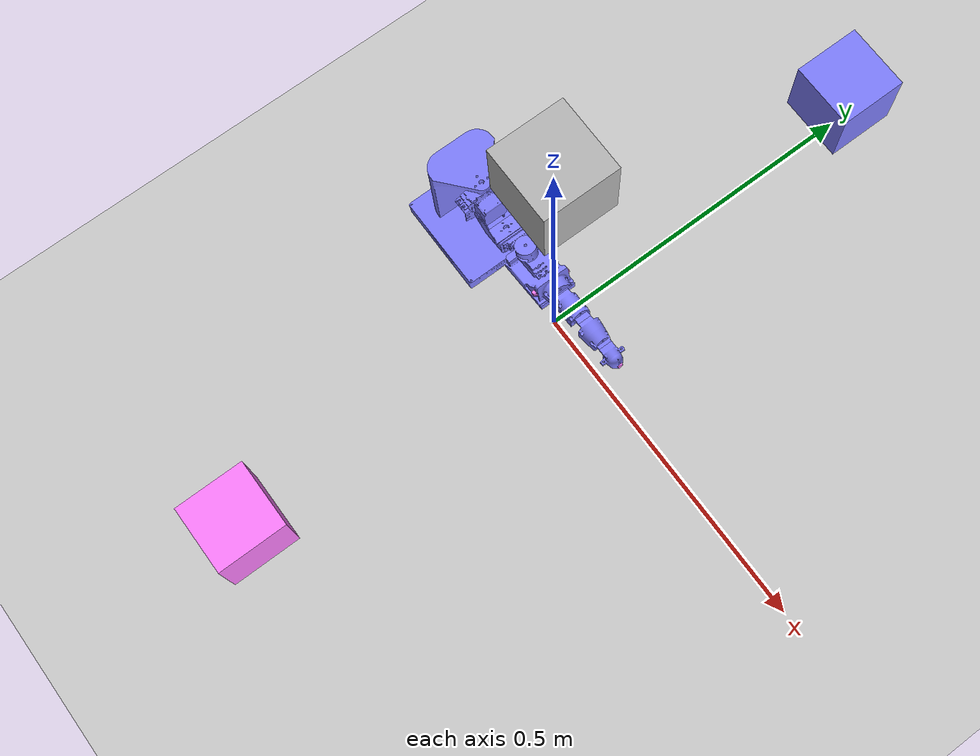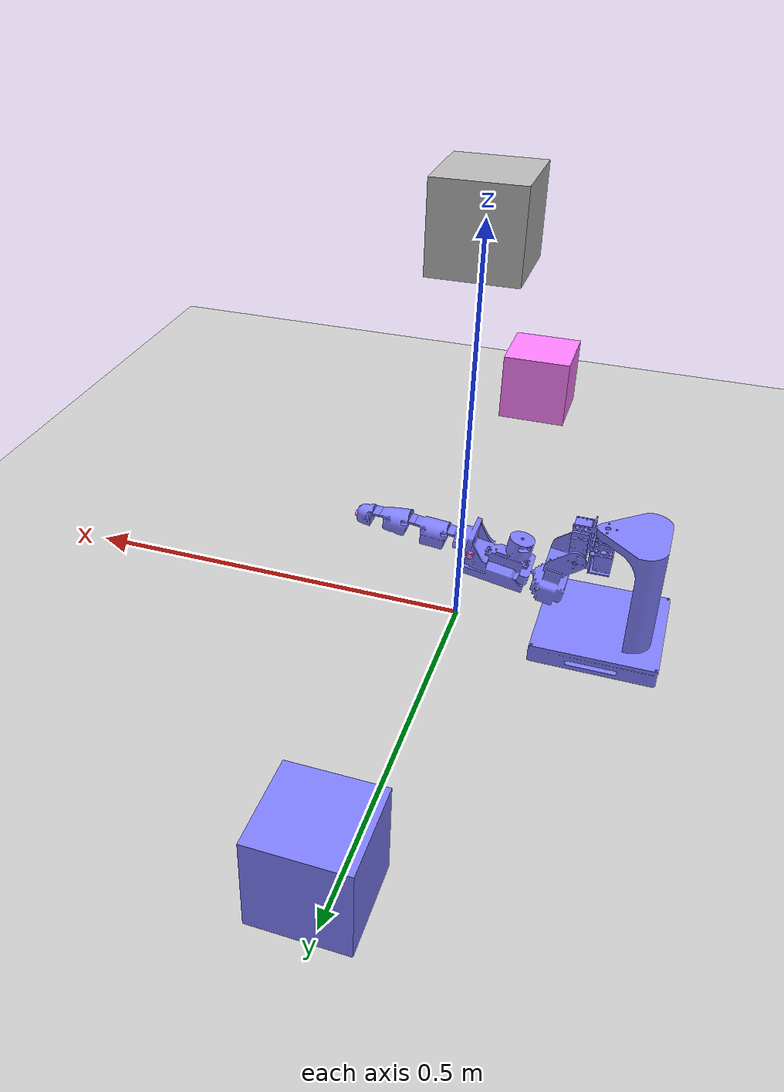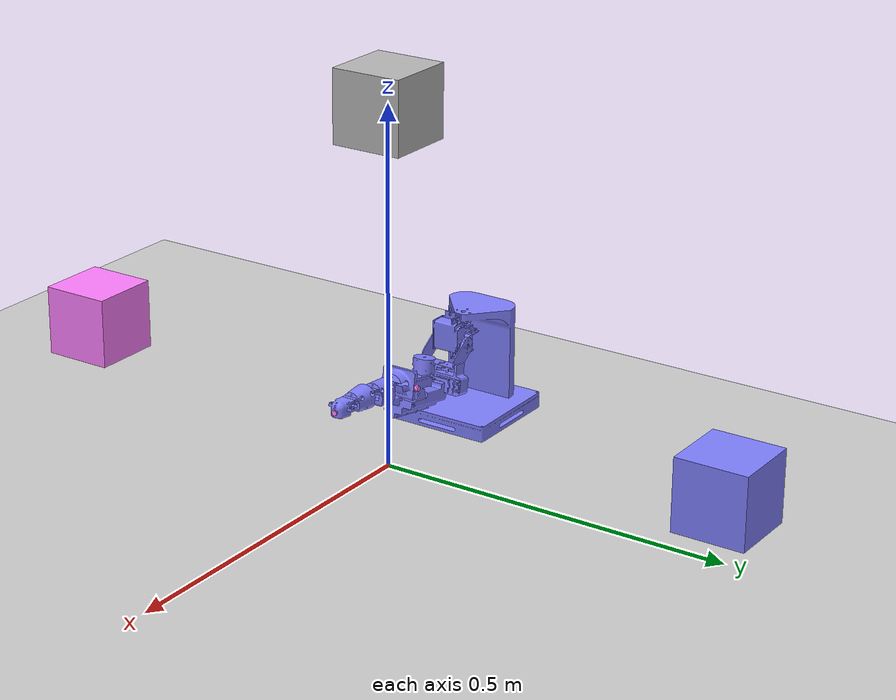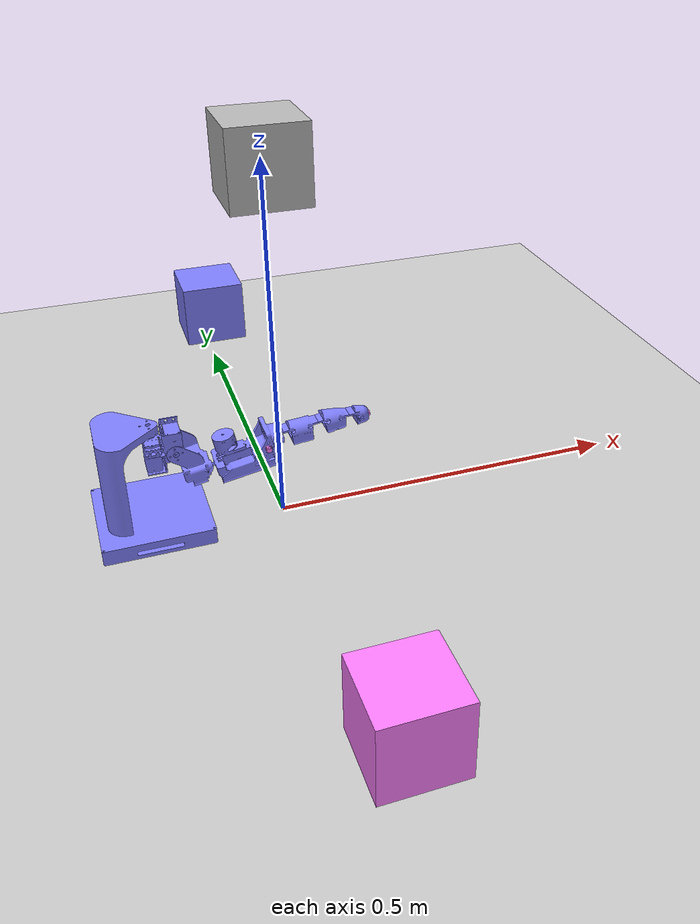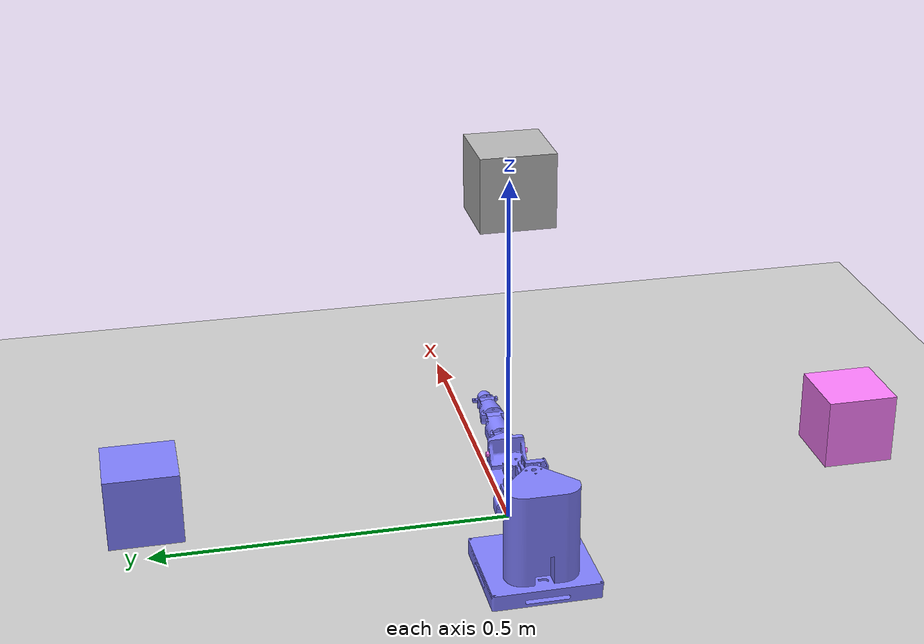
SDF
<?xml version="1.0"?>
<sdf version="1.8">
  <world name="arm_simulation">
    <physics name="1ms" type="ignored">
      <max_step_size>0.001</max_step_size>
      <real_time_factor>1.0</real_time_factor> <!-- Change this to run faster/slower than real time. Set higher to allow running faster (e.g. 2.0 means gazebo can run a max of twice as fast as realtime) -->
    </physics>
    <plugin
      filename="gz-sim-physics-system"
      name="gz::sim::systems::Physics">
    </plugin>
    <plugin
      filename="gz-sim-user-commands-system"
      name="gz::sim::systems::UserCommands">
    </plugin>
    <plugin
      filename="gz-sim-scene-broadcaster-system"
      name="gz::sim::systems::SceneBroadcaster">
    </plugin>
    <plugin
      filename="gz-sim-sensors-system"
      name="gz::sim::systems::Sensors">
      <render_engine>ogre2</render_engine>
    </plugin>
    <gui fullscreen="0">
      <!-- 3D scene -->
      <plugin filename="MinimalScene" name="3D View">
        <gz-gui>
          <title>3D View</title>
          <property type="bool" key="showTitleBar">false</property>
          <property type="string" key="state">docked</property>
        </gz-gui>

        <engine>ogre2</engine>
        <scene>scene</scene>
        <ambient_light>0.4 0.4 0.4</ambient_light>
        <background_color>0.8 0.8 0.8</background_color>
        <camera_pose>-6 0 6 0 0.5 0</camera_pose>
        <camera_clip>
          <near>0.25</near>
          <far>25000</far>
        </camera_clip>
      </plugin>
      <plugin filename="VisualizationCapabilities" name="Visualization Capabilities">
        <gz-gui>
          <property key="resizable" type="bool">false</property>
          <property key="width" type="double">5</property>
          <property key="height" type="double">5</property>
          <property key="state" type="string">floating</property>
          <property key="showTitleBar" type="bool">false</property>
        </gz-gui>
      </plugin>
      <plugin filename="GzSceneManager" name="Scene Manager">
        <gz-gui>
          <property key="resizable" type="bool">false</property>
          <property key="width" type="double">5</property>
          <property key="height" type="double">5</property>
          <property key="state" type="string">floating</property>
          <property key="showTitleBar" type="bool">false</property>
        </gz-gui>
      </plugin>
      <plugin filename="InteractiveViewControl" name="Interactive View Control">
        <gz-gui>
          <property key="resizable" type="bool">false</property>
        </gz-gui>
      </plugin>
      <plugin filename="ImageDisplay" name="Image Display">
        <gz-gui>
        </gz-gui>
      </plugin>
      <plugin filename="WorldControl" name="World control">
        <gz-gui>
          <title>World control</title>
          <property type="bool" key="showTitleBar">false</property>
          <property type="bool" key="resizable">false</property>
          <property type="double" key="height">72</property>
          <property type="double" key="width">121</property>
          <property type="double" key="z">1</property>

          <property type="string" key="state">floating</property>
          <anchors target="3D View">
            <line own="left" target="left"/>
            <line own="bottom" target="bottom"/>
          </anchors>
        </gz-gui>

        <play_pause>true</play_pause>
        <step>true</step>
        <start_paused>true</start_paused>
        <service>/world/world_demo/control</service>
        <stats_topic>/world/world_demo/stats</stats_topic>
      </plugin>
      <plugin filename="WorldStats" name="World stats">
        <gz-gui>
          <title>World stats</title>
          <property type="bool" key="showTitleBar">false</property>
          <property type="bool" key="resizable">false</property>
          <property type="double" key="height">110</property>
          <property type="double" key="width">290</property>
          <property type="double" key="z">1</property>

          <property type="string" key="state">floating</property>
          <anchors target="3D View">
            <line own="right" target="right"/>
            <line own="bottom" target="bottom"/>
          </anchors>
        </gz-gui>

        <sim_time>true</sim_time>
        <real_time>true</real_time>
        <real_time_factor>true</real_time_factor>
        <iterations>true</iterations>
        <topic>/world/world_demo/stats</topic>

      </plugin>
    </gui>

    <light type="directional" name="sun">
      <cast_shadows>true</cast_shadows>
      <pose>0 0 10 0 0 0</pose>
      <diffuse>0.8 0.8 0.8 1</diffuse>
      <specular>0.2 0.2 0.2 1</specular>
      <attenuation>
        <range>1000</range>
        <constant>0.9</constant>
        <linear>0.01</linear>
        <quadratic>0.001</quadratic>
      </attenuation>
      <direction>-0.5 0.1 -0.9</direction>
    </light>

    <model name="ground_plane">
      <static>true</static>
      <link name="link">
        <collision name="collision">
          <geometry>
            <plane>
              <normal>0 0 1</normal>
            </plane>
          </geometry>
        </collision>
        <visual name="visual">
        <geometry>
          <plane>
            <normal>0 0 1</normal>
            <size>100 100</size>
          </plane>
        </geometry>
        <material>
          <ambient>0.8 0.8 0.8 1</ambient>
          <diffuse>0.8 0.8 0.8 1</diffuse>
          <specular>0.8 0.8 0.8 1</specular>
        </material>
        </visual>
      </link>
    </model>

    <include>
      <uri>model://Arm</uri>
    </include>

    <include>
      <name>Box1</name>
      <uri>model://BoxBlack</uri>
    </include>
    <include>
      <name>Box2</name>
      <uri>model://BoxBlue</uri>
      <pose>0 0.5 0.1 0 0 0</pose>
    </include>
    <include>
      <name>Box3</name>
      <uri>model://BoxPink</uri>
      <pose>0 -0.5 0.1 0 0 0</pose>
    </include>
  </world>
</sdf>

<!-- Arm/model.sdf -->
<sdf version="1.6">
	<model name="Arm" canonical_link='tower'>
		<link name="tower">
			<self_collide>false</self_collide>
			<pose relative_to='__model__'>0.0 0.0 0.100 0.0 0.0 0.0</pose>
			<inertial>
				<pose>0.0 0.0 0.0 0 0 0</pose>
				<mass>0.7800822049961268</mass>
				<inertia>
					<ixx>0.0008189995972765369</ixx>
					<ixy>-0.0003321188952345544</ixy>
					<ixz>-5.532811351125456e-06</ixz>
					<iyy>0.0008182778100633983</iyy>
					<iyz>-5.094133998022077e-06</iyz>
					<izz>0.0011911804118455984</izz>
				</inertia>
			</inertial>
			<collision name="tower_collision">
				<geometry>
					<mesh>
						<uri>model://Arm/meshes/CAD/tower.stl</uri>
						<scale>0.001 0.001 0.001</scale>
					</mesh>
				</geometry>
			</collision>
			<visual name="tower_visual">
				<geometry>
					<mesh>
						<uri>model://Arm/meshes/CAD/tower.stl</uri>
						<scale>0.001 0.001 0.001</scale>
					</mesh>
				</geometry>
				<material>
					<ambient>0.5 0.5 1.0 1</ambient>
					<diffuse>0.5 0.5 1.0 1</diffuse>
					<specular>0.0 0.0 1.0 1</specular>
				</material>
			</visual>
		</link>
		<link name="wrist_up_down">
			<self_collide>false</self_collide>
			<pose relative_to='tower'>0.0 0.0 0.0 0.0 0.0 0.0</pose>
			<inertial>
				<pose>0.0 0.0 0.0 0 0 0</pose>
				<mass>0.7800822049961268</mass>
				<inertia>
					<ixx>0.0008189995972765369</ixx>
					<ixy>-0.0003321188952345544</ixy>
					<ixz>-5.532811351125456e-06</ixz>
					<iyy>0.0008182778100633983</iyy>
					<iyz>-5.094133998022077e-06</iyz>
					<izz>0.0011911804118455984</izz>
				</inertia>
			</inertial>
			<collision name="wrist_up_down_collision">
				<geometry>
					<mesh>
						<uri>model://Arm/meshes/CAD/wrist_up_down.stl</uri>
						<scale>0.001 0.001 0.001</scale>
					</mesh>
				</geometry>
			</collision>
			<visual name="wrist_up_down_visual">
				<geometry>
					<mesh>
						<uri>model://Arm/meshes/CAD/wrist_up_down.stl</uri>
						<scale>0.001 0.001 0.001</scale>
					</mesh>
				</geometry>
				<material>
					<ambient>0.5 0.5 1.0 1</ambient>
					<diffuse>0.5 0.5 1.0 1</diffuse>
					<specular>0.0 0.0 1.0 1</specular>
				</material>
			</visual>
		</link>
		<link name="wrist_rotation">
			<self_collide>false</self_collide>
			<pose relative_to='wrist_up_down'>0.0 0.0 0.0 0.0 0.0 0.0</pose>
			<inertial>
				<pose>0.0 0.0 0.0 0 0 0</pose>
				<mass>0.7800822049961268</mass>
				<inertia>
					<ixx>0.0008189995972765369</ixx>
					<ixy>-0.0003321188952345544</ixy>
					<ixz>-5.532811351125456e-06</ixz>
					<iyy>0.0008182778100633983</iyy>
					<iyz>-5.094133998022077e-06</iyz>
					<izz>0.0011911804118455984</izz>
				</inertia>
			</inertial>
			<collision name="wrist_rotation_collision">
				<geometry>
					<mesh>
						<uri>model://Arm/meshes/CAD/wrist_rotation.stl</uri>
						<scale>0.001 0.001 0.001</scale>
					</mesh>
				</geometry>
			</collision>
			<visual name="wrist_rotation_visual">
				<geometry>
					<mesh>
						<uri>model://Arm/meshes/CAD/wrist_rotation.stl</uri>
						<scale>0.001 0.001 0.001</scale>
					</mesh>
				</geometry>
				<material>
					<ambient>0.5 0.5 1.0 1</ambient>
					<diffuse>0.5 0.5 1.0 1</diffuse>
					<specular>0.0 0.0 1.0 1</specular>
				</material>
			</visual>
		</link>
		<link name="finger_base">
			<self_collide>false</self_collide>
			<pose relative_to='wrist_rotation'>0.0 0.0 0.0 0.0 0.0 0.0</pose>
			<inertial>
				<pose>0.0 0.0 0.0 0 0 0</pose>
				<mass>0.128949218150533</mass>
				<inertia>
					<ixx>1.3336947843685135e-05</ixx>
					<ixy>2.6381911721746838e-06</ixy>
					<ixz>-1.1575411658425877e-09</ixz>
					<iyy>2.3658235645015537e-05</iyy>
					<iyz>1.2349325959428327e-09</iyz>
					<izz>2.068821289453926e-05</izz>
				</inertia>
			</inertial>
			<collision name="finger_base_collision">
				<geometry>
					<mesh>
						<uri>model://Arm/meshes/CAD/finger_base.stl</uri>
						<scale>0.001 0.001 0.001</scale>
					</mesh>
				</geometry>
			</collision>
			<visual name="finger_base_visual">
				<geometry>
					<mesh>
						<uri>model://Arm/meshes/CAD/finger_base.stl</uri>
						<scale>0.001 0.001 0.001</scale>
					</mesh>
				</geometry>
				<material>
					<ambient>0.5 0.5 1.0 1</ambient>
					<diffuse>0.5 0.5 1.0 1</diffuse>
					<specular>0.0 0.0 1.0 1</specular>
				</material>
			</visual>
		</link>
		<link name="base_finger_camera_side_1">
			<self_collide>false</self_collide>
			<pose relative_to='finger_base'>-0.018 -0.018 0.013 0.0 -0.2 0.0</pose>
			<inertial>
				<mass>0.0001</mass>
				<inertia> <!-- inertias are tricky to compute -->
					<!-- http://gazebosim.org/tutorials?tut=inertia&cat=build_robot -->
					<ixx>0.0000083</ixx>       <!-- for a box: ixx = 0.083 * mass * (y*y + z*z) -->
					<ixy>0.0</ixy>         <!-- for a box: ixy = 0 -->
					<ixz>0.0</ixz>         <!-- for a box: ixz = 0 -->
					<iyy>0.0000083</iyy>       <!-- for a box: iyy = 0.083 * mass * (x*x + z*z) -->
					<iyz>0.0</iyz>         <!-- for a box: iyz = 0 -->
					<izz>0.0000083</izz>       <!-- for a box: izz = 0.083 * mass * (x*x + y*y) -->
				</inertia>
			</inertial>
			<collision name="base_finger_camera_side_1_collision">
				<geometry>
					<mesh>
						<uri>model://Arm/meshes/CAD/ov2640.stl</uri>
						<scale>0.001 0.001 0.001</scale>
					</mesh>
				</geometry>
			</collision>
			<visual name="base_finger_camera_side_1_visual">
				<geometry>
					<mesh>
						<uri>model://Arm/meshes/CAD/ov2640.stl</uri>
						<scale>0.001 0.001 0.001</scale>
					</mesh>
				</geometry>
				<material>
					<ambient>1.0 0.5 1.0 1</ambient>
					<diffuse>1.0 0.5 1.0 1</diffuse>
					<specular>0.0 0.0 1.0 1</specular>
				</material>
			</visual>
			<sensor name="base_finger_camera_side_1_sensor" type="camera">
				<pose relative_to='base_finger_camera_side_1'>0 0 0 0.0 0.0 -1.5708</pose>
				<camera>
					<horizontal_fov>1.047</horizontal_fov>
					<image>
						<width>100</width>
						<height>100</height>
					</image>
					<clip>
						<near>0.1</near>
						<far>100</far>
					</clip>
				</camera>
				<always_on>1</always_on>
				<update_rate>10</update_rate>
				<visualize>true</visualize>
				<topic>base_finger_camera_side_1/image</topic>
			</sensor>
		</link>
		<link name="base_finger_camera_side_2">
			<self_collide>false</self_collide>
			<pose relative_to='finger_base'>-0.018 0.032 0.013 0.0 0.2 3.14159265359</pose>
			<inertial>
				<mass>0.0001</mass>
				<inertia> <!-- inertias are tricky to compute -->
					<!-- http://gazebosim.org/tutorials?tut=inertia&cat=build_robot -->
					<ixx>0.0000083</ixx>       <!-- for a box: ixx = 0.083 * mass * (y*y + z*z) -->
					<ixy>0.0</ixy>         <!-- for a box: ixy = 0 -->
					<ixz>0.0</ixz>         <!-- for a box: ixz = 0 -->
					<iyy>0.0000083</iyy>       <!-- for a box: iyy = 0.083 * mass * (x*x + z*z) -->
					<iyz>0.0</iyz>         <!-- for a box: iyz = 0 -->
					<izz>0.0000083</izz>       <!-- for a box: izz = 0.083 * mass * (x*x + y*y) -->
				</inertia>
			</inertial>
			<collision name="base_finger_camera_side_2_collision">
				<geometry>
					<mesh>
						<uri>model://Arm/meshes/CAD/ov2640.stl</uri>
						<scale>0.001 0.001 0.001</scale>
					</mesh>
				</geometry>
			</collision>
			<visual name="base_finger_camera_side_2_visual">
				<geometry>
					<mesh>
						<uri>model://Arm/meshes/CAD/ov2640.stl</uri>
						<scale>0.001 0.001 0.001</scale>
					</mesh>
				</geometry>
				<material>
					<ambient>1.0 0.5 1.0 1</ambient>
					<diffuse>1.0 0.5 1.0 1</diffuse>
					<specular>0.0 0.0 1.0 1</specular>
				</material>
			</visual>
			<sensor name="base_finger_camera_side_2_sensor" type="camera">
				<pose relative_to='base_finger_camera_side_1'>0 0 0 0.0 0.0 1.5708</pose>
				<camera>
					<horizontal_fov>1.047</horizontal_fov>
					<image>
						<width>100</width>
						<height>100</height>
					</image>
					<clip>
						<near>0.1</near>
						<far>100</far>
					</clip>
				</camera>
				<always_on>1</always_on>
				<update_rate>10</update_rate>
				<visualize>true</visualize>
				<topic>base_finger_camera_side_2/image</topic>
			</sensor>
		</link>
		<link name="base_side_middle_finger">
			<self_collide>false</self_collide>
			<pose relative_to='finger_base'>0.0 0.0 0.0 0.0 0.0 0.0</pose>
			<inertial>
				<pose>0.0 0.0 0.0 0 0 0</pose>
				<mass>0.12894921828212288</mass>
				<inertia>
					<ixx>1.3340731146245855e-05</ixx>
					<ixy>2.640026584155514e-06</ixy>
					<ixz>-1.157551999311779e-09</ixz>
					<iyy>2.3658236576714398e-05</iyy>
					<iyz>1.1711211688438666e-09</iyz>
					<izz>2.0691997124651706e-05</izz>
				</inertia>
			</inertial>
			<collision name="base_side_middle_finger_collision">
				<geometry>
					<mesh>
						<uri>model://Arm/meshes/CAD/base_side_middle_finger.stl</uri>
						<scale>0.001 0.001 0.001</scale>
					</mesh>
				</geometry>
			</collision>
			<visual name="base_side_middle_finger_visual">
				<geometry>
					<mesh>
						<uri>model://Arm/meshes/CAD/base_side_middle_finger.stl</uri>
						<scale>0.001 0.001 0.001</scale>
					</mesh>
				</geometry>
				<material>
					<ambient>0.5 0.5 1.0 1</ambient>
					<diffuse>0.5 0.5 1.0 1</diffuse>
					<specular>0.0 0.0 1.0 1</specular>
				</material>
			</visual>
		</link>
		<link name="base_side_middle_finger_camera">
			<self_collide>false</self_collide>
			<pose relative_to='base_side_middle_finger'>0.032 0.008 0.005 1.5708 -0.1 0</pose>
			<inertial>
				<mass>0.0001</mass>
				<inertia> <!-- inertias are tricky to compute -->
					<!-- http://gazebosim.org/tutorials?tut=inertia&cat=build_robot -->
					<ixx>0.0000083</ixx>       <!-- for a box: ixx = 0.083 * mass * (y*y + z*z) -->
					<ixy>0.0</ixy>         <!-- for a box: ixy = 0 -->
					<ixz>0.0</ixz>         <!-- for a box: ixz = 0 -->
					<iyy>0.0000083</iyy>       <!-- for a box: iyy = 0.083 * mass * (x*x + z*z) -->
					<iyz>0.0</iyz>         <!-- for a box: iyz = 0 -->
					<izz>0.0000083</izz>       <!-- for a box: izz = 0.083 * mass * (x*x + y*y) -->
				</inertia>
			</inertial>
			<collision name="base_side_middle_finger_camera_collision">
				<geometry>
					<mesh>
						<uri>model://Arm/meshes/CAD/ov2640.stl</uri>
						<scale>0.001 0.001 0.001</scale>
					</mesh>
				</geometry>
			</collision>
			<visual name="base_side_middle_finger_camera_visual">
				<geometry>
					<mesh>
						<uri>model://Arm/meshes/CAD/ov2640.stl</uri>
						<scale>0.001 0.001 0.001</scale>
					</mesh>
				</geometry>
				<material>
					<ambient>1.0 0.5 1.0 1</ambient>
					<diffuse>1.0 0.5 1.0 1</diffuse>
					<specular>0.0 0.0 1.0 1</specular>
				</material>
			</visual>
			<sensor name="base_side_middle_finger_camera_sensor" type="camera">
				<pose relative_to='base_side_middle_finger_camera'>0 0 0 0.0 0.0 -1.5708</pose>
				<camera>
					<horizontal_fov>1.047</horizontal_fov>
					<image>
						<width>100</width>
						<height>100</height>
					</image>
					<clip>
						<near>0.1</near>
						<far>100</far>
					</clip>
				</camera>
				<always_on>1</always_on>
				<update_rate>10</update_rate>
				<visualize>true</visualize>
				<topic>base_side_middle_finger_camera/image</topic>
			</sensor>
		</link>
		<link name="tip_side_middle_finger">
			<self_collide>false</self_collide>
			<pose relative_to='base_side_middle_finger'>0.0 0.0 0.0 0.0 0.0 0.0</pose>
			<inertial>
				<pose>0.0 0.0 0.0 0 0 0</pose>
				<mass>0.12894921828212288</mass>
				<inertia>
					<ixx>1.3340731146245855e-05</ixx>
					<ixy>2.640026584155514e-06</ixy>
					<ixz>-1.157551999311779e-09</ixz>
					<iyy>2.3658236576714398e-05</iyy>
					<iyz>1.1711211688438666e-09</iyz>
					<izz>2.0691997124651706e-05</izz>
				</inertia>
			</inertial>
			<collision name="tip_side_middle_finger_collision">
				<geometry>
					<mesh>
						<uri>model://Arm/meshes/CAD/tip_side_middle_finger.stl</uri>
						<scale>0.001 0.001 0.001</scale>
					</mesh>
				</geometry>
			</collision>
			<visual name="tip_side_middle_finger_visual">
				<geometry>
					<mesh>
						<uri>model://Arm/meshes/CAD/tip_side_middle_finger.stl</uri>
						<scale>0.001 0.001 0.001</scale>
					</mesh>
				</geometry>
				<material>
					<ambient>0.5 0.5 1.0 1</ambient>
					<diffuse>0.5 0.5 1.0 1</diffuse>
					<specular>0.0 0.0 1.0 1</specular>
				</material>
			</visual>
		</link>
		<link name="tip_side_middle_finger_camera">
			<self_collide>false</self_collide>
			<pose relative_to='tip_side_middle_finger'>0.080 0.008 0.015 1.5708 -0.1 0</pose>
			<inertial>
				<mass>0.0001</mass>
				<inertia> <!-- inertias are tricky to compute -->
					<!-- http://gazebosim.org/tutorials?tut=inertia&cat=build_robot -->
					<ixx>0.0000083</ixx>       <!-- for a box: ixx = 0.083 * mass * (y*y + z*z) -->
					<ixy>0.0</ixy>         <!-- for a box: ixy = 0 -->
					<ixz>0.0</ixz>         <!-- for a box: ixz = 0 -->
					<iyy>0.0000083</iyy>       <!-- for a box: iyy = 0.083 * mass * (x*x + z*z) -->
					<iyz>0.0</iyz>         <!-- for a box: iyz = 0 -->
					<izz>0.0000083</izz>       <!-- for a box: izz = 0.083 * mass * (x*x + y*y) -->
				</inertia>
			</inertial>
			<collision name="tip_side_middle_finger_camera_collision">
				<geometry>
					<mesh>
						<uri>model://Arm/meshes/CAD/ov2640.stl</uri>
						<scale>0.001 0.001 0.001</scale>
					</mesh>
				</geometry>
			</collision>
			<visual name="tip_side_middle_finger_camera_visual">
				<geometry>
					<mesh>
						<uri>model://Arm/meshes/CAD/ov2640.stl</uri>
						<scale>0.001 0.001 0.001</scale>
					</mesh>
				</geometry>
				<material>
					<ambient>1.0 0.5 1.0 1</ambient>
					<diffuse>1.0 0.5 1.0 1</diffuse>
					<specular>0.0 0.0 1.0 1</specular>
				</material>
			</visual>
			<sensor name="tip_side_middle_finger_camera_sensor" type="camera">
				<pose relative_to='tip_side_middle_finger_camera'>0 0 0 0.0 0.0 -1.5708</pose>
				<camera>
					<horizontal_fov>1.047</horizontal_fov>
					<image>
						<width>100</width>
						<height>100</height>
					</image>
					<clip>
						<near>0.1</near>
						<far>100</far>
					</clip>
				</camera>
				<always_on>1</always_on>
				<update_rate>10</update_rate>
				<visualize>true</visualize>
				<topic>tip_side_middle_finger_camera/image</topic>
			</sensor>
		</link>
		<link name="finger_tip">
			<self_collide>false</self_collide>
			<pose relative_to='tip_side_middle_finger'>0.0 0.0 0.0 0.0 0.0 0.0</pose>
			<inertial>
				<pose>0.0 0.0 0.0 0 0 0</pose>
				<mass>0.0510965513982137</mass>
				<inertia>
					<ixx>3.859598389065379e-06</ixx>
					<ixy>1.0610151268752532e-06</ixy>
					<ixz>-2.588027822672534e-11</ixz>
					<iyy>5.608124521502678e-06</iyy>
					<iyz>1.990000540489853e-11</iyz>
					<izz>5.682590632321194e-06</izz>
				</inertia>
			</inertial>
			<collision name="finger_tip_collision">
				<geometry>
					<mesh>
						<uri>model://Arm/meshes/CAD/finger_tip.stl</uri>
						<scale>0.001 0.001 0.001</scale>
					</mesh>
				</geometry>
			</collision>
			<visual name="finger_tip_visual">
				<geometry>
					<mesh>
						<uri>model://Arm/meshes/CAD/finger_tip.stl</uri>
						<scale>0.001 0.001 0.001</scale>
					</mesh>
				</geometry>
				<material>
					<ambient>0.5 0.5 1.0 1</ambient>
					<diffuse>0.5 0.5 1.0 1</diffuse>
					<specular>0.0 0.0 1.0 1</specular>
				</material>
			</visual>
		</link>
		<link name="finger_tip_down_camera">
			<self_collide>false</self_collide>
			<pose relative_to='finger_tip'>0.118 0.008 0.018 1.5708 -0.1 0</pose>
			<inertial>
				<mass>0.0001</mass>
				<inertia> <!-- inertias are tricky to compute -->
					<!-- http://gazebosim.org/tutorials?tut=inertia&cat=build_robot -->
					<ixx>0.0000083</ixx>       <!-- for a box: ixx = 0.083 * mass * (y*y + z*z) -->
					<ixy>0.0</ixy>         <!-- for a box: ixy = 0 -->
					<ixz>0.0</ixz>         <!-- for a box: ixz = 0 -->
					<iyy>0.0000083</iyy>       <!-- for a box: iyy = 0.083 * mass * (x*x + z*z) -->
					<iyz>0.0</iyz>         <!-- for a box: iyz = 0 -->
					<izz>0.0000083</izz>       <!-- for a box: izz = 0.083 * mass * (x*x + y*y) -->
				</inertia>
			</inertial>
			<collision name="finger_tip_down_camera_collision">
				<geometry>
					<mesh>
						<uri>model://Arm/meshes/CAD/ov2640.stl</uri>
						<scale>0.001 0.001 0.001</scale>
					</mesh>
				</geometry>
			</collision>
			<visual name="finger_tip_down_camera_visual">
				<geometry>
					<mesh>
						<uri>model://Arm/meshes/CAD/ov2640.stl</uri>
						<scale>0.001 0.001 0.001</scale>
					</mesh>
				</geometry>
				<material>
					<ambient>1.0 0.5 1.0 1</ambient>
					<diffuse>1.0 0.5 1.0 1</diffuse>
					<specular>0.0 0.0 1.0 1</specular>
				</material>
			</visual>
			<sensor name="finger_tip_down_camera_sensor" type="camera">
				<pose relative_to='finger_tip_down_camera'>0 0 0 0.0 0.0 -1.5708</pose>
				<camera>
					<horizontal_fov>1.047</horizontal_fov>
					<image>
						<width>100</width>
						<height>100</height>
					</image>
					<clip>
						<near>0.1</near>
						<far>100</far>
					</clip>
				</camera>
				<always_on>1</always_on>
				<update_rate>10</update_rate>
				<visualize>true</visualize>
				<topic>finger_tip_down_camera/image</topic>
			</sensor>
		</link>
		<link name="finger_tip_forward_camera">
			<self_collide>false</self_collide>
			<pose relative_to='finger_tip'>0.128 0.008 0.025 1.5708 -1.6708 0</pose>
			<inertial>
				<mass>0.0001</mass>
				<inertia> <!-- inertias are tricky to compute -->
					<!-- http://gazebosim.org/tutorials?tut=inertia&cat=build_robot -->
					<ixx>0.0000083</ixx>       <!-- for a box: ixx = 0.083 * mass * (y*y + z*z) -->
					<ixy>0.0</ixy>         <!-- for a box: ixy = 0 -->
					<ixz>0.0</ixz>         <!-- for a box: ixz = 0 -->
					<iyy>0.0000083</iyy>       <!-- for a box: iyy = 0.083 * mass * (x*x + z*z) -->
					<iyz>0.0</iyz>         <!-- for a box: iyz = 0 -->
					<izz>0.0000083</izz>       <!-- for a box: izz = 0.083 * mass * (x*x + y*y) -->
				</inertia>
			</inertial>
			<collision name="finger_tip_forward_camera_collision">
				<geometry>
					<mesh>
						<uri>model://Arm/meshes/CAD/ov2640.stl</uri>
						<scale>0.001 0.001 0.001</scale>
					</mesh>
				</geometry>
			</collision>
			<visual name="finger_tip_forward_camera_visual">
				<geometry>
					<mesh>
						<uri>model://Arm/meshes/CAD/ov2640.stl</uri>
						<scale>0.001 0.001 0.001</scale>
					</mesh>
				</geometry>
				<material>
					<ambient>1.0 0.5 1.0 1</ambient>
					<diffuse>1.0 0.5 1.0 1</diffuse>
					<specular>0.0 0.0 1.0 1</specular>
				</material>
			</visual>
			<sensor name="finger_tip_forward_camera_sensor" type="camera">
				<pose relative_to='finger_tip_forward_camera'>0 0 0 0.0 0.0 -1.5708</pose>
				<camera>
					<horizontal_fov>1.047</horizontal_fov>
					<image>
						<width>100</width>
						<height>100</height>
					</image>
					<clip>
						<near>0.1</near>
						<far>100</far>
					</clip>
				</camera>
				<always_on>1</always_on>
				<update_rate>10</update_rate>
				<visualize>true</visualize>
				<topic>finger_tip_forward_camera/image</topic>
			</sensor>
		</link>
		<joint name="world_fixed" type="fixed"> <!-- Fixes the base of the arm -->
			<parent>world</parent>
			<child>tower</child>
		</joint>
		<joint name="wrist_up_down_to_tower" type="revolute">
			<parent>tower</parent>
			<child>wrist_up_down</child>
			<pose relative_to='tower'>-0.165 0.01 0.0 0 0 0</pose>
			<axis>
				<xyz expressed_in='tower'>0 0 1</xyz>
				<limit>
					<lower>-3.14159265359</lower>
					<upper>3.14159265359</upper>
				</limit>
			</axis>
		</joint>
		<joint name="wrist_rotation_to_wrist_up_down" type="revolute">
			<parent>wrist_up_down</parent>
			<child>wrist_rotation</child>
			<pose relative_to='wrist_up_down'>-0.139 0 0.031 0 0 0</pose>
			<axis>
				<xyz expressed_in='wrist_up_down'>0 1 0</xyz>
				<limit>
					<lower>-3.14159265359</lower>
					<upper>3.14159265359</upper>
				</limit>
			</axis>
		</joint>
		<joint name="finger_base_to_wrist_rotation" type="revolute">
			<parent>wrist_rotation</parent>
			<child>finger_base</child>
			<!-- TODO - fix this pose to revolve around the correct point -->
			<pose relative_to='wrist_rotation'>0 0.005 0.012 0 0 0</pose>
			<axis>
				<xyz expressed_in='wrist_rotation'>0.95 0.0.31225 0</xyz>
				<limit>
					<lower>-3.14159265359</lower>
					<upper>3.14159265359</upper>
				</limit>
			</axis>
		</joint>
		<joint name="base_side_middle_finger_to_finger_base" type="revolute">
			<parent>finger_base</parent>
			<child>base_side_middle_finger</child>
			<!-- TODO - fix this pose to revolve around the correct point -->
			<pose relative_to='finger_base'>0.007 0 0.0255 0 0 0</pose>
			<axis>
				<xyz expressed_in='finger_base'>0 1 0</xyz>
				<limit>
					<lower>-1.5708</lower>
					<upper>1.5708</upper>
				</limit>
			</axis>
		</joint>
		<joint name="tip_side_middle_finger_to_base_side_middle_finger" type="revolute">
			<parent>base_side_middle_finger</parent>
			<child>tip_side_middle_finger</child>
			<pose relative_to='base_side_middle_finger'>0.0557 0 0.03 0 0 0</pose>
			<axis>
				<xyz expressed_in='base_side_middle_finger'>0 1 0</xyz>
				<limit>
					<lower>-1.5708</lower>
					<upper>1.5708</upper>
				</limit>
			</axis>
		</joint>
		<joint name="finger_tip_to_tip_side_middle_finger" type="revolute">
			<parent>tip_side_middle_finger</parent>
			<child>finger_tip</child>
			<!-- TODO - fix this pose to revolve around the correct point -->
			<pose relative_to='tip_side_middle_finger'>0.0982 0 0.032 0 0 0</pose>
			<axis>
				<xyz expressed_in='tip_side_middle_finger'>0 1 0</xyz>
				<limit>
					<lower>-1.5708</lower>
					<upper>1.5708</upper>
				</limit>
			</axis>
		</joint>
		<!-- Camera Joints -->
		<joint name="base_finger_camera_side_1_joint" type="fixed">
			<parent>finger_base</parent>
			<child>base_finger_camera_side_1</child>
			<pose relative_to='finger_base'>0 0 0 0 0 0</pose>
		</joint>
		<joint name="base_finger_camera_side_2_joint" type="fixed">
			<parent>finger_base</parent>
			<child>base_finger_camera_side_2</child>
			<pose relative_to='finger_base'>0 0 0 0 0 0</pose>
		</joint>
		<joint name="base_side_middle_finger_camera_joint" type="fixed">
			<parent>base_side_middle_finger</parent>
			<child>base_side_middle_finger_camera</child>
			<pose relative_to='base_side_middle_finger'>0 0 0 0 0 0</pose>
		</joint>
		<joint name="tip_side_middle_finger_camera_joint" type="fixed">
			<parent>tip_side_middle_finger</parent>
			<child>tip_side_middle_finger_camera</child>
			<pose relative_to='tip_side_middle_finger'>0 0 0 0 0 0</pose>
		</joint>
		<joint name="finger_tip_forward_camera_joint" type="fixed">
			<parent>finger_tip</parent>
			<child>finger_tip_forward_camera</child>
			<pose relative_to='finger_tip'>0 0 0 0 0 0</pose>
		</joint>
		<joint name="finger_tip_down_camera_joint" type="fixed">
			<parent>finger_tip</parent>
			<child>finger_tip_down_camera</child>
			<pose relative_to='finger_tip'>0 0 0 0 0 0</pose>
		</joint>

		<plugin filename="libBabyRobot.so" name="gz::sim::systems::BabyRobot">
			<has_temperature>false</has_temperature>
			<has_current>false</has_current>
			<has_actuator_1>true</has_actuator_1>
			<joint_name_1_1>wrist_up_down_to_tower</joint_name_1_1>
			<pid_1_p>10</pid_1_p>
			<pid_1_i>0.9</pid_1_i>
			<pid_1_d>0.5</pid_1_d>
			<pid_1_imin>-10</pid_1_imin>
			<pid_1_imax>10</pid_1_imax>
			<min_command_1>-1.5708</min_command_1> <!-- -90 deg -->
			<max_command_1>1.5708</max_command_1> <!-- 90 deg -->
			<has_camera>true</has_camera>
			<ms_check_camera>100</ms_check_camera>
			<camera_topic>/base_side_middle_finger_camera/image</camera_topic>
			<listen_port>1200</listen_port>
			<send_port>1201</send_port>
			<remote_port>1100</remote_port>
			<remote_ip>127.0.0.1</remote_ip>
			<mac_address>1.2.3.0.0.0</mac_address>
		</plugin>
		<plugin filename="libBabyRobot.so" name="gz::sim::systems::BabyRobot">
			<has_temperature>false</has_temperature>
			<has_current>false</has_current>
			<has_actuator_1>true</has_actuator_1>
			<joint_name_1_1>wrist_rotation_to_wrist_up_down</joint_name_1_1>
			<pid_1_p>20</pid_1_p>
			<pid_1_i>0.9</pid_1_i>
			<pid_1_d>0.5</pid_1_d>
			<pid_1_imin>-10</pid_1_imin>
			<pid_1_imax>10</pid_1_imax>
			<min_command_1>-1.5708</min_command_1> <!-- -90 deg -->
			<max_command_1>1.5708</max_command_1> <!-- 90 deg -->
			<has_camera>true</has_camera>
			<ms_check_camera>100</ms_check_camera>
			<camera_topic>/tip_side_middle_finger_camera/image</camera_topic>
			<listen_port>1210</listen_port>
			<send_port>1211</send_port>
			<remote_port>1100</remote_port>
			<remote_ip>127.0.0.1</remote_ip>
			<mac_address>1.2.3.1.0.0</mac_address>
		</plugin>
		<plugin filename="libBabyRobot.so" name="gz::sim::systems::BabyRobot">
			<has_temperature>false</has_temperature>
			<has_current>false</has_current>
			<has_actuator_1>true</has_actuator_1>
			<joint_name_1_1>finger_base_to_wrist_rotation</joint_name_1_1>
			<pid_1_p>1</pid_1_p>
			<pid_1_i>0.3</pid_1_i>
			<pid_1_d>0.1</pid_1_d>
			<pid_1_imin>-10</pid_1_imin>
			<pid_1_imax>10</pid_1_imax>
			<min_command_1>-1.5708</min_command_1> <!-- -90 deg -->
			<max_command_1>1.5708</max_command_1> <!-- 90 deg -->
			<has_camera>true</has_camera>
			<ms_check_camera>100</ms_check_camera>
			<camera_topic>/finger_tip_down_camera/image</camera_topic>
			<listen_port>1220</listen_port>
			<send_port>1221</send_port>
			<remote_port>1100</remote_port>
			<remote_ip>127.0.0.1</remote_ip>
			<mac_address>1.2.3.2.0.0</mac_address>
		</plugin>
		<plugin filename="libBabyRobot.so" name="gz::sim::systems::BabyRobot">
			<has_temperature>false</has_temperature>
			<has_current>false</has_current>
			<has_actuator_1>true</has_actuator_1>
			<joint_name_1_1>base_side_middle_finger_to_finger_base</joint_name_1_1>
			<joint_name_1_2>tip_side_middle_finger_to_base_side_middle_finger</joint_name_1_2>
			<joint_name_1_3>finger_tip_to_tip_side_middle_finger</joint_name_1_3>
			<pid_1_p>1.0</pid_1_p>
			<pid_1_i>0.3</pid_1_i>
			<pid_1_d>0.1</pid_1_d>
			<pid_1_imin>-10</pid_1_imin>
			<pid_1_imax>10</pid_1_imax>
			<min_command_1>-1.0472</min_command_1> <!-- -60 deg -->
			<max_command_1>1.0472</max_command_1> <!-- 60 deg -->
			<has_camera>true</has_camera>
			<ms_check_camera>100</ms_check_camera>
			<camera_topic>/finger_tip_forward_camera/image</camera_topic>
			<listen_port>1230</listen_port>
			<send_port>1231</send_port>
			<remote_port>1100</remote_port>
			<remote_ip>127.0.0.1</remote_ip>
			<mac_address>1.2.3.3.0.0</mac_address>
		</plugin>

	</model>
</sdf>

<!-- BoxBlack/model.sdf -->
<sdf version="1.4">
  <model name="BoxBlack">
    <pose>0 0 0.5 0 0 0</pose>
    <static>true</static>
    <link name="link">
      <inertial>
        <mass>1.0</mass>
        <inertia> <!-- inertias are tricky to compute -->
          <!-- http://gazebosim.org/tutorials?tut=inertia&cat=build_robot -->
          <ixx>0.083</ixx>       <!-- for a box: ixx = 0.083 * mass * (y*y + z*z) -->
          <ixy>0.0</ixy>         <!-- for a box: ixy = 0 -->
          <ixz>0.0</ixz>         <!-- for a box: ixz = 0 -->
          <iyy>0.083</iyy>       <!-- for a box: iyy = 0.083 * mass * (x*x + z*z) -->
          <iyz>0.0</iyz>         <!-- for a box: iyz = 0 -->
          <izz>0.083</izz>       <!-- for a box: izz = 0.083 * mass * (x*x + y*y) -->
        </inertia>
      </inertial>
      <collision name="collision">
        <geometry>
          <box>
            <size>0.1 0.1 0.1</size>
          </box>
        </geometry>
      </collision>
      <visual name="visual">
        <geometry>
          <box>
            <size>0.1 0.1 0.1</size>
          </box>
        </geometry>
      </visual>
    </link>
  </model>
</sdf>

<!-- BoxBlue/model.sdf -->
<sdf version="1.4">
  <model name="BoxBlue">
    <pose>0 0 0.5 0 0 0</pose>
    <static>true</static>
    <link name="link">
      <inertial>
        <mass>1.0</mass>
        <inertia> <!-- inertias are tricky to compute -->
          <!-- http://gazebosim.org/tutorials?tut=inertia&cat=build_robot -->
          <ixx>0.083</ixx>       <!-- for a box: ixx = 0.083 * mass * (y*y + z*z) -->
          <ixy>0.0</ixy>         <!-- for a box: ixy = 0 -->
          <ixz>0.0</ixz>         <!-- for a box: ixz = 0 -->
          <iyy>0.083</iyy>       <!-- for a box: iyy = 0.083 * mass * (x*x + z*z) -->
          <iyz>0.0</iyz>         <!-- for a box: iyz = 0 -->
          <izz>0.083</izz>       <!-- for a box: izz = 0.083 * mass * (x*x + y*y) -->
        </inertia>
      </inertial>
      <collision name="collision">
        <geometry>
          <box>
            <size>0.1 0.1 0.1</size>
          </box>
        </geometry>
      </collision>
      <visual name="visual">
        <geometry>
          <box>
            <size>0.1 0.1 0.1</size>
          </box>
        </geometry>
        <material>
					<ambient>0.5 0.5 1.0 1</ambient>
					<diffuse>0.5 0.5 1.0 1</diffuse>
					<specular>0.0 0.0 1.0 1</specular>
				</material>
      </visual>
    </link>
  </model>
</sdf>

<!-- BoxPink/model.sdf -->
<sdf version="1.4">
  <model name="BoxPink">
    <pose>0 0 0.5 0 0 0</pose>
    <static>true</static>
    <link name="link">
      <inertial>
        <mass>1.0</mass>
        <inertia> <!-- inertias are tricky to compute -->
          <!-- http://gazebosim.org/tutorials?tut=inertia&cat=build_robot -->
          <ixx>0.083</ixx>       <!-- for a box: ixx = 0.083 * mass * (y*y + z*z) -->
          <ixy>0.0</ixy>         <!-- for a box: ixy = 0 -->
          <ixz>0.0</ixz>         <!-- for a box: ixz = 0 -->
          <iyy>0.083</iyy>       <!-- for a box: iyy = 0.083 * mass * (x*x + z*z) -->
          <iyz>0.0</iyz>         <!-- for a box: iyz = 0 -->
          <izz>0.083</izz>       <!-- for a box: izz = 0.083 * mass * (x*x + y*y) -->
        </inertia>
      </inertial>
      <collision name="collision">
        <geometry>
          <box>
            <size>0.1 0.1 0.1</size>
          </box>
        </geometry>
      </collision>
      <visual name="visual">
        <geometry>
          <box>
            <size>0.1 0.1 0.1</size>
          </box>
        </geometry>
        <material>
					<ambient>1.0 0.5 1.0 1</ambient>
					<diffuse>1.0 0.5 1.0 1</diffuse>
					<specular>0.0 0.0 1.0 1</specular>
				</material>
      </visual>
    </link>
  </model>
</sdf>
